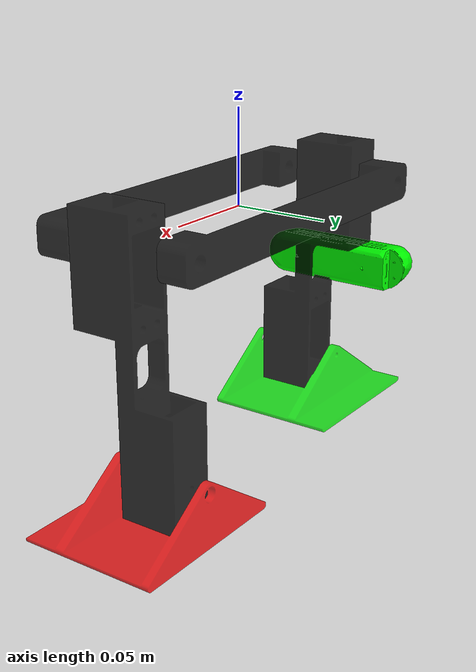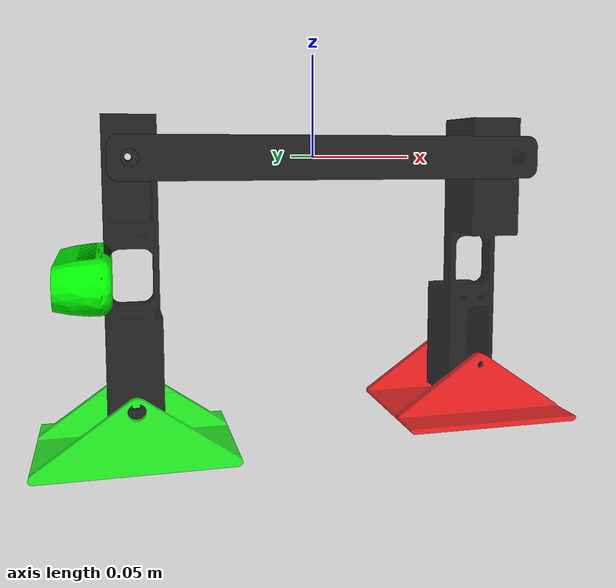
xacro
<?xml version="1.0" ?>
<robot xmlns:xacro="http://www.ros.org/wiki/xacro"  name="kumi">

    <xacro:property name="kumi_share" value="$(find kumi)"/>

    <xacro:include filename="${kumi_share}/description/xacro/variables.xacro" />
    <xacro:include filename="${kumi_share}/description/xacro/trajectory_control.xacro" />
    <xacro:include filename="${kumi_share}/description/xacro/kumi_mesh_stereocamera.xacro" />
    <xacro:include filename="${kumi_share}/description/xacro/sensors_config.xacro" />
</robot>

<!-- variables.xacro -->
<robot xmlns:xacro="http://www.ros.org/wiki/xacro"  name="kumi">

    <xacro:property name="pi" value="3.14159" />
    <xacro:property name="ang_low_lim" value="0.85" />
    <xacro:property name="ang_up_lim" value="4" />
    <xacro:property name="thikness" value="0.15" />
    <xacro:property name="lenght" value="0.18" />
    <xacro:property name="leg_len" value="0.11" />
    <xacro:property name="foot_len" value="0.5" />
    <xacro:property name="toll" value="0.005" />
    <xacro:property name="mass" value="0.3" />
    <xacro:property name="joint_friction" value="0.2" />

</robot>

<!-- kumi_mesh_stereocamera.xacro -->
<robot xmlns:xacro="http://www.ros.org/wiki/xacro" name="kumi">

    <xacro:property name="mesh_scale" value="0.001 0.001 0.001"/>
    <xacro:property name="mesh_dir" value="file://${kumi_share}/description/mesh"/>
    <xacro:property name="body_mesh" value="${mesh_dir}/body_v5.STL"/>
    <xacro:property name="leg_mesh" value="${mesh_dir}/leg_v2.stl"/>
    <xacro:property name="foot_mesh" value="${mesh_dir}/piedino_v3.STL"/>
    <xacro:property name="realsense_mesh" value="${mesh_dir}/realsense.stl"/>

    <link name="body">
        <visual>
            <origin xyz="0 0 0" rpy="0 0 0"/>
            <geometry>
                <mesh filename="${body_mesh}" scale="${mesh_scale}"/>
            </geometry>
            <material name="gray">
                <color rgba="0 0 0 0.8"/>
            </material>
        </visual>
        <collision>
            <origin xyz="0 0 0" rpy="0 0 0"/>
            <geometry>
                <mesh filename="${body_mesh}" scale="${mesh_scale}"/>
            </geometry>
        </collision>
        <inertial>
            <origin xyz="0 0 0" rpy="0 0 0"/>
            <mass value="0.15"/>
            <inertia ixx="0.000226" ixy="0.0" ixz="0.0" iyy="0.000755" iyz="0.0" izz="0.000971"/>
        </inertial>
    </link>

    <joint name="front_sh" type="revolute">
        <origin xyz="${-lenght/2} -0.006 0" rpy="0 0 0"/>
        <parent link="body"/>
        <child link="front_leg"/>
        <axis xyz="0 -1 0"/>
        <limit lower="${-2*pi}" upper="${2*pi}" velocity="5" effort="1000"/>
        <dynamics damping="0.5" friction="${joint_friction}"/>
    </joint>

    <gazebo reference="front_sh">
        <sensor name="front_sh_force_torque" type="force_torque">
            <always_on>true</always_on>
            <update_rate>500</update_rate>
            <force_torque>
                <frame>child</frame>
                <measure_direction>child_to_parent</measure_direction>
            </force_torque>
        </sensor>
    </gazebo>

    <link name="front_leg">
        <visual>
            <origin xyz="0 0 0" rpy="0 ${-pi/2} 0"/>
            <geometry>
                <mesh filename="${leg_mesh}" scale="${mesh_scale}"/>
            </geometry>
            <material name="gray">
                <color rgba="0 0 0 0.8"/>
            </material>
        </visual>
        <collision>
            <origin xyz="0 0 0" rpy="0 ${-pi/2} 0"/>
            <geometry>
                <mesh filename="${leg_mesh}" scale="${mesh_scale}"/>
            </geometry>
        </collision>
        <inertial>
            <origin xyz="0 0 0" rpy="0 ${-pi/2} 0"/>
            <mass value="0.3"/>
            <inertia ixx="0.000023773" ixy="0.0" ixz="0.0" iyy="0.000513246" iyz="0.0" izz="0.000524232"/>
        </inertial>
    </link>

    <joint name="realsense_joint" type="fixed">
        <origin xyz="0 0 0" rpy="0 0 0"/>
        <parent link="front_leg"/>
        <child link="realsense"/>
    </joint>

    <link name="realsense">
        <visual>
            <origin xyz="-0.025 0 -0.057" rpy="${pi/2} 0  ${-pi/2}"/>
            <geometry>
                <mesh filename="${realsense_mesh}" scale="${mesh_scale}"/>
            </geometry>
            <material name="green">
                <color rgba="0 1 0 1"/>
            </material>
        </visual>
        <collision>
            <origin xyz="-0.025 0 -0.057" rpy="${pi/2} 0  ${-pi/2}"/>
            <geometry>
                <mesh filename="${realsense_mesh}" scale="${mesh_scale}"/>
            </geometry>
        </collision>
        <inertial>
            <origin xyz="-0.025 0 -0.057" rpy="${pi/2} 0  ${-pi/2}"/>
            <mass value="0.005"/>
            <inertia ixx="0.000091" ixy="0.0" ixz="0.0" iyy="0.000165" iyz="0.0" izz="0.000091"/>
        </inertial>
    </link>

    <gazebo reference="realsense">
        <sensor name="realsense" type="rgbd_camera">
            <pose>-0.025 0 -0.057 0 0 3.14159</pose>
            <always_on>1</always_on>
            <update_rate>100</update_rate>
            <topic>/d435_rgbd</topic>
            <frameName>realsense</frameName>
            <camera name="rs_front">
                <horizontal_fov>1.50098</horizontal_fov>
                <lens>
                    <intrinsics>
                    <fx>343.159</fx>
                    <fy>343.159</fy>
                    <cx>319.5</cx>
                    <cy>179.5</cy>
                    <s>0</s>
                    </intrinsics>
                </lens>
                <distortion>
                    <k1>0.0</k1>
                    <k2>0.0</k2>
                    <k3>0.0</k3>
                    <p1>0.0</p1>
                    <p2>0.0</p2>
                    <center>0.5 0.5</center>
                </distortion>
                <image>
                    <width>640</width>
                    <height>360</height>
                    <format>R8G8B8</format>
                </image>
                <clip>
                    <near>0.01</near>
                    <far>300</far>
                </clip>
                <depth_camera>
                    <clip>
                    <near>0.1</near>
                    <far>10</far>
                    </clip>
                </depth_camera>
                <noise>
                    <type>gaussian</type>
                    <mean>0</mean>
                    <stddev>0.007</stddev>
                </noise>
            </camera>
        </sensor>
    </gazebo>

    <joint name="front_ank_y" type="revolute">
        <origin xyz="0 0 ${-leg_len}" rpy="0 0 0"/>
        <parent link="front_leg"/>
        <child link="front_foot_dummy"/>
        <axis xyz="0 -1 0"/>
        <limit lower="${-2*pi}" upper="${2*pi}" velocity="5" effort="1000"/>
        <dynamics damping="0.1" friction="${joint_friction}"/>
    </joint>

    <gazebo reference="front_ank_y">
        <sensor name="front_ank_force_torque" type="force_torque">
            <always_on>true</always_on>
            <update_rate>500</update_rate>
            <force_torque>
                <frame>child</frame>
                <measure_direction>child_to_parent</measure_direction>
            </force_torque>
        </sensor>
    </gazebo>

    <link name="front_foot_dummy">
        <inertial>
            <origin xyz="0 0 0" rpy="0 0 0"/>
            <mass value="0.001"/>
            <inertia ixx="1e-5" ixy="0" ixz="0" iyy="1e-5" iyz="0" izz="1e-5"/>
        </inertial>
    </link>
    <joint name="front_ank_z" type="revolute">
        <origin xyz="0 0 0" rpy="0 0 0"/>
        <parent link="front_foot_dummy"/>
        <child link="front_foot"/>
        <axis xyz="0 0 1"/>
        <limit lower="${-0.1*pi}" upper="${0.1*pi}" velocity="5" effort="1000"/>
        <dynamics damping="0.1" friction="${joint_friction}"/>
    </joint>

    <gazebo reference="front_ank_z">
        <sensor name="front_ank_force_torque" type="force_torque">
            <always_on>true</always_on>
            <update_rate>500</update_rate>
            <force_torque>
                <frame>child</frame>
                <measure_direction>child_to_parent</measure_direction>
            </force_torque>
        </sensor>
    </gazebo>

    <link name="front_foot">
        <visual>
            <origin xyz="0 -0.007 0" rpy="${pi/2} 0  ${-pi/2}"/>
            <geometry>
                <mesh filename="${foot_mesh}" scale="${mesh_scale}"/>
            </geometry>
            <material name="green">
                <color rgba="0 1 0 0.8"/>
            </material>
        </visual>
        <collision name="frontFootCollision">
            <origin xyz="0 0 0" rpy="${pi/2} 0  ${-pi/2}"/>
            <geometry>
                <mesh filename="${foot_mesh}" scale="${mesh_scale}"/>
            </geometry>
        </collision>
        <inertial>
            <origin xyz="0 0 0" rpy="${pi/2} 0  ${-pi/2}"/>
            <mass value="0.15"/>
            <inertia ixx="0.000091" ixy="0.0" ixz="0.0" iyy="0.000165" iyz="0.0" izz="0.000091"/>
        </inertial>
    </link>

    <joint name="rear_sh" type="revolute">
        <origin xyz="${lenght/2} 0.006 0" rpy="0 0 0"/>
        <parent link="body"/>
        <child link="rear_leg"/>
        <axis xyz="0 1 0"/>
        <limit lower="${-2*pi}" upper="${2*pi}" velocity="5" effort="1000"/>
        <dynamics damping="0.5" friction="${joint_friction}"/>
    </joint>

    <gazebo reference="rear_sh">
        <sensor name="rear_sh_force_torque" type="force_torque">
            <always_on>true</always_on>
            <update_rate>500</update_rate>
            <force_torque>
                <frame>child</frame>
                <measure_direction>child_to_parent</measure_direction>
            </force_torque>
        </sensor>
    </gazebo>

    <link name="rear_leg">
        <visual>
            <origin xyz="0 0 0" rpy="0 ${-pi/2} ${pi}"/>
            <geometry>
                <mesh filename="${leg_mesh}" scale="${mesh_scale}"/>
            </geometry>
            <material name="gray">
                <color rgba="0 0 0 0.8"/>
            </material>
        </visual>
        <collision>
            <origin xyz="0 0 0" rpy="0 ${-pi/2} ${pi}"/>
            <geometry>
                <mesh filename="${leg_mesh}" scale="${mesh_scale}"/>
            </geometry>
        </collision>
        <inertial>
            <origin xyz="0 0 0" rpy="0 ${-pi/2} ${pi}"/>
            <mass value="0.3"/>
            <inertia ixx="0.000023773" ixy="0.0" ixz="0.0" iyy="0.000513246" iyz="0.0" izz="0.000524232"/>
        </inertial>
    </link>

    <joint name="rear_ank_y" type="revolute">
        <origin xyz="0 0 ${-leg_len}" rpy="0 0 0"/>
        <parent link="rear_leg"/>
        <child link="rear_foot_dummy"/>
        <axis xyz="0 1 0"/>
        <limit lower="${-2*pi}" upper="${2*pi}" velocity="5" effort="1000"/>
        <dynamics damping="0.1" friction="${joint_friction}"/>
    </joint>

    <gazebo reference="rear_ank_y">
        <sensor name="rear_ank_force_torque" type="force_torque">
            <always_on>true</always_on>
            <update_rate>500</update_rate>
            <force_torque>
                <frame>child</frame>
                <measure_direction>child_to_parent</measure_direction>
            </force_torque>
        </sensor>
    </gazebo>

    <link name="rear_foot_dummy">
        <inertial>
            <origin xyz="0 0 0" rpy="0 0 0"/>
            <mass value="0.001"/>
            <inertia ixx="1e-5" ixy="0" ixz="0" iyy="1e-5" iyz="0" izz="1e-5"/>
        </inertial>
    </link>

    <joint name="rear_ank_z" type="revolute">
        <origin xyz="0 0 0" rpy="0 0 0"/>
        <parent link="rear_foot_dummy"/>
        <child link="rear_foot"/>
        <axis xyz="0 0 1"/>
        <limit lower="${-0.1*pi}" upper="${0.1*pi}" velocity="5" effort="1000"/>
        <dynamics damping="0.1" friction="${joint_friction}"/>
    </joint>

    <gazebo reference="rear_ank_z">
        <sensor name="front_ank_force_torque" type="force_torque">
            <always_on>true</always_on>
            <update_rate>500</update_rate>
            <force_torque>
                <frame>child</frame>
                <measure_direction>child_to_parent</measure_direction>
            </force_torque>
        </sensor>
    </gazebo>

    <link name="rear_foot">
        <visual>
            <origin xyz="0 0.007 0" rpy="${pi/2} 0  ${pi/2}"/>
            <geometry>
                <mesh filename="${foot_mesh}" scale="${mesh_scale}"/>
            </geometry>
            <material name="red">
                <color rgba="1 0 0 0.8"/>
            </material>
        </visual>
        <collision name="rearFootCollision">
            <origin xyz="0 0 0" rpy="${pi/2} 0  ${pi/2}"/>
            <geometry>
                <mesh filename="${foot_mesh}" scale="${mesh_scale}"/>
            </geometry>
        </collision>
        <inertial>
            <origin xyz="0 0 0" rpy="${pi/2} 0  ${pi/2}"/>
            <mass value="0.15"/>
            <inertia ixx="0.000091" ixy="0.0" ixz="0.0" iyy="0.000165" iyz="0.0" izz="0.000091"/>
        </inertial>
    </link>
</robot>
